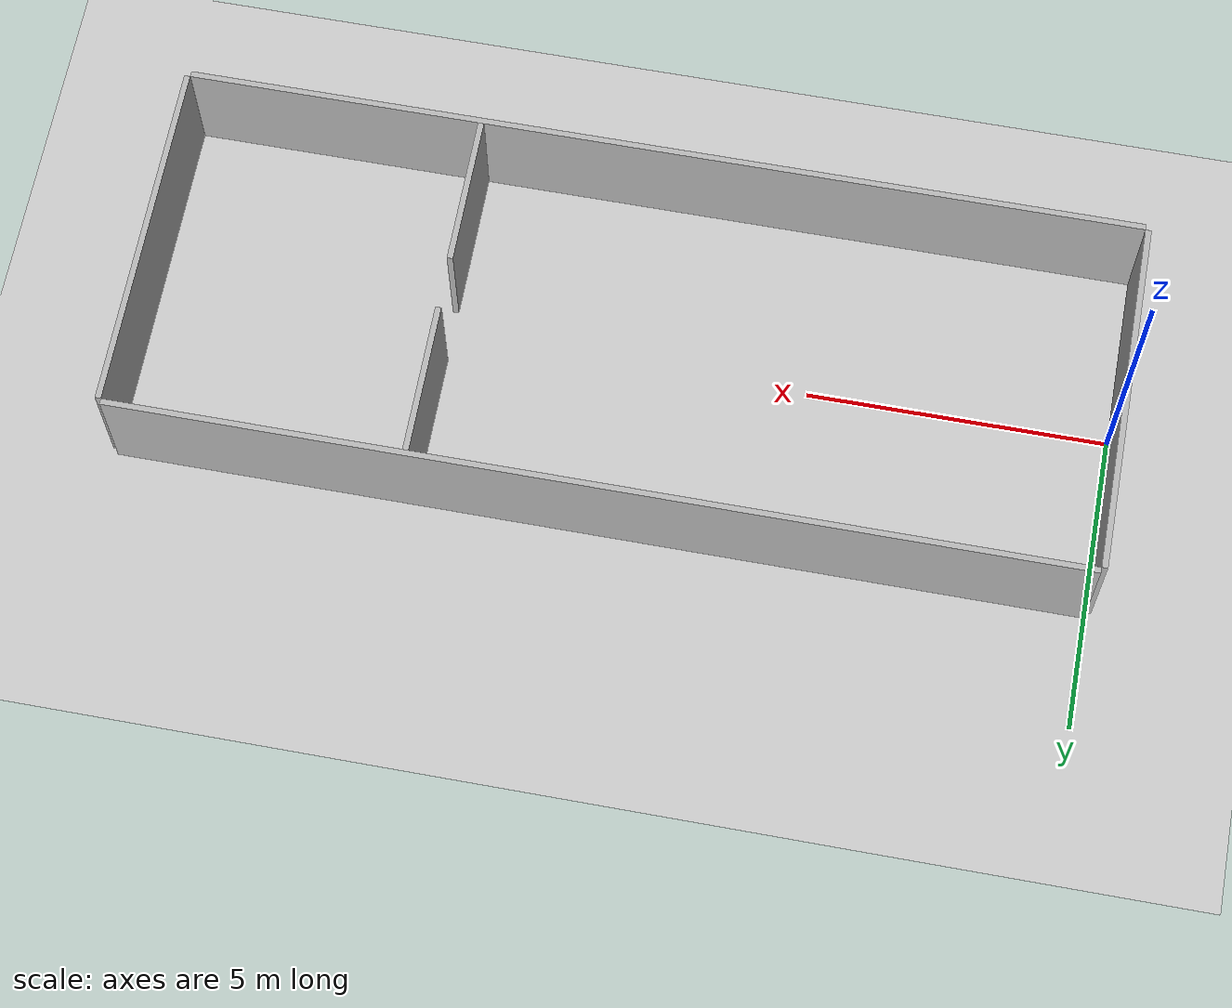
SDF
<?xml version="1.0"?>
<sdf version="1.6"><world name="obstacle_room"><include><uri>model://ground_plane</uri></include><include><uri>model://sun</uri></include><plugin name="ros_init" filename="libgazebo_ros_init.so"/><plugin name="ros_factory" filename="libgazebo_ros_factory.so"/><model name="wall_0"><static>true</static><pose>8.0 3.05 1.0 0 0 0</pose><link name="link"><collision name="c"><geometry><box><size>16.0 0.10000000000000009 2.0</size></box></geometry></collision><visual name="v"><geometry><box><size>16.0 0.10000000000000009 2.0</size></box></geometry></visual></link></model><model name="wall_1"><static>true</static><pose>8.0 -3.05 1.0 0 0 0</pose><link name="link"><collision name="c"><geometry><box><size>16.0 0.10000000000000009 2.0</size></box></geometry></collision><visual name="v"><geometry><box><size>16.0 0.10000000000000009 2.0</size></box></geometry></visual></link></model><model name="wall_2"><static>true</static><pose>-0.05 0.0 1.0 0 0 0</pose><link name="link"><collision name="c"><geometry><box><size>0.1 6.0 2.0</size></box></geometry></collision><visual name="v"><geometry><box><size>0.1 6.0 2.0</size></box></geometry></visual></link></model><model name="wall_3"><static>true</static><pose>16.05 0.0 1.0 0 0 0</pose><link name="link"><collision name="c"><geometry><box><size>0.10000000000000142 6.0 2.0</size></box></geometry></collision><visual name="v"><geometry><box><size>0.10000000000000142 6.0 2.0</size></box></geometry></visual></link></model><model name="wall_4"><static>true</static><pose>11.05 1.725 1.0 0 0 0</pose><link name="link"><collision name="c"><geometry><box><size>0.09999999999999964 2.55 2.0</size></box></geometry></collision><visual name="v"><geometry><box><size>0.09999999999999964 2.55 2.0</size></box></geometry></visual></link></model><model name="wall_5"><static>true</static><pose>11.05 -1.725 1.0 0 0 0</pose><link name="link"><collision name="c"><geometry><box><size>0.09999999999999964 2.55 2.0</size></box></geometry></collision><visual name="v"><geometry><box><size>0.09999999999999964 2.55 2.0</size></box></geometry></visual></link></model></world></sdf>
